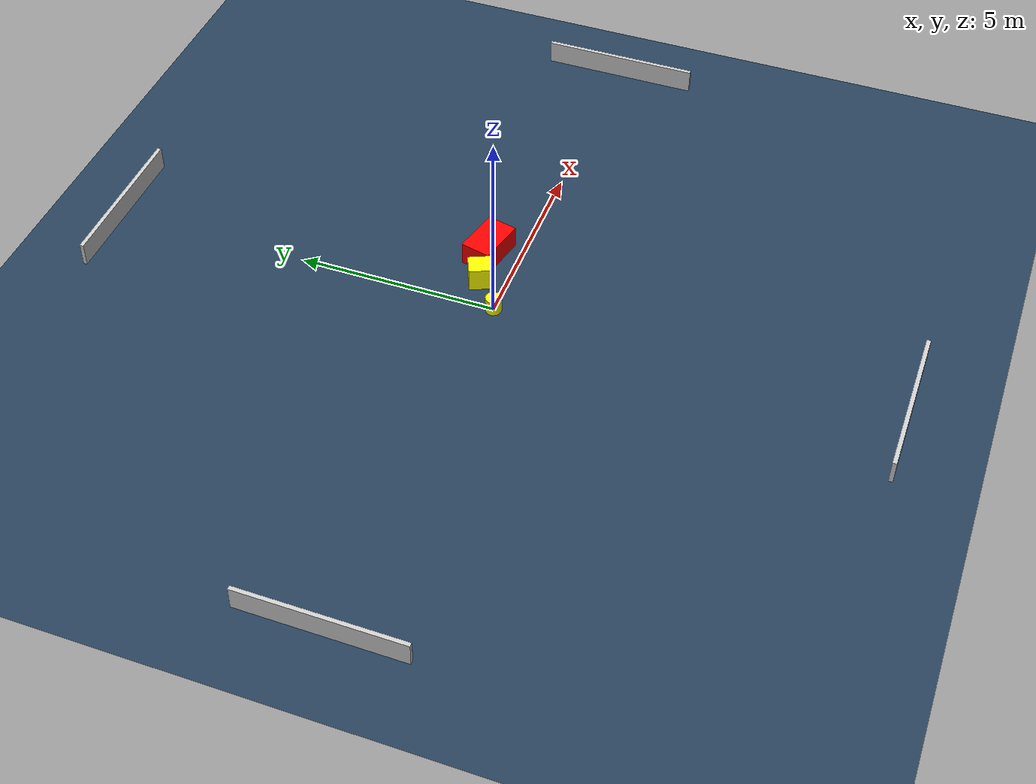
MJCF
<?xml version="1.0" ?>
<mujoco model="generated_environment">
  <option timestep="0.01" integrator="RK4" cone="elliptic"/>
  <default>
    <geom density="1"/>
  </default>
  <asset>
    <texture builtin="gradient" height="3072" name="skybox" rgb1="0.3 0.5 0.7" rgb2="0 0 0" type="skybox" width="512"/>
    <texture builtin="checker" height="300" name="groundplane" rgb1="0.2 0.3 0.4" rgb2="0.1 0.2 0.3" type="2d" width="300"/>
    <material name="groundplane" reflectance="0.2" texrepeat="5 5" texture="groundplane"/>
  </asset>
  <worldbody>
    <light dir="0 0 -1" directional="true" pos="0 0 1.5"/>
    <geom condim="3" friction="0.5 0.005 0.001" material="groundplane" name="floor" pos="0 0 0" size="0 0 0.05" type="plane"/>
    <body name="walls">
      <geom name="wall_1" condim="4" pos="-10.0 0.0 0.3" rgba="0.800000011920929 0.800000011920929 0.800000011920929 1.0" size="0.05 2.0 0.3" type="box"/>
      <geom name="wall_2" condim="4" pos="10.0 0.0 0.3" rgba="0.800000011920929 0.800000011920929 0.800000011920929 1.0" size="0.05 2.0 0.3" type="box"/>
      <geom name="wall_3" condim="4" pos="0.0 -10.0 0.3" rgba="0.800000011920929 0.800000011920929 0.800000011920929 1.0" size="2.0 0.05 0.3" type="box"/>
      <geom name="wall_4" condim="4" pos="0.0 10.0 0.3" rgba="0.800000011920929 0.800000011920929 0.800000011920929 1.0" size="2.0 0.05 0.3" type="box"/>
    </body>
    <body name="robot">
      <joint name="joint_x" type="slide" pos="0 0 0" axis="1 0 0"/>
      <joint name="joint_y" type="slide" pos="0 0 0" axis="0 1 0"/>
      <geom name="robot" type="cylinder" pos="0.0 0.0 0.2" size="0.2 0.2 0.0" mass="5.0" friction="1.0 0.005 0.0001" condim="4" rgba="1.0 1.0 0.0 1.0"/>
    </body>
    <body name="obstacle_1_movable">
      <geom name="obstacle_1_movable" condim="4" pos="0.8094005621107033 0.6242740572924707 0.3" euler="0 0 114.53412828000627" friction="0.0 0.005 0.001" rgba="1.0 1.0 0.0 1.0" size="0.31340329012157686 0.2630563238291051 0.3" type="box" mass="0.1"/>
      <joint type="free"/>
    </body>
    <body name="obstacle_2_static">
      <geom name="obstacle_2_static" condim="4" pos="1.8124579613221583 0.8007115835157121 0.3" euler="0 0 346.63789559278814" friction="0.0 0.005 0.001" rgba="1.0 0.0 0.0 1.0" size="0.608143331470573 0.3834489624843816 0.3" type="box"/>
    </body>
  </worldbody>
  <actuator>
    <motor name="actuator_x" joint="joint_x" gear="1" ctrlrange="-1 1"/>
    <motor name="actuator_y" joint="joint_y" gear="1" ctrlrange="-1 1"/>
  </actuator>
</mujoco>
